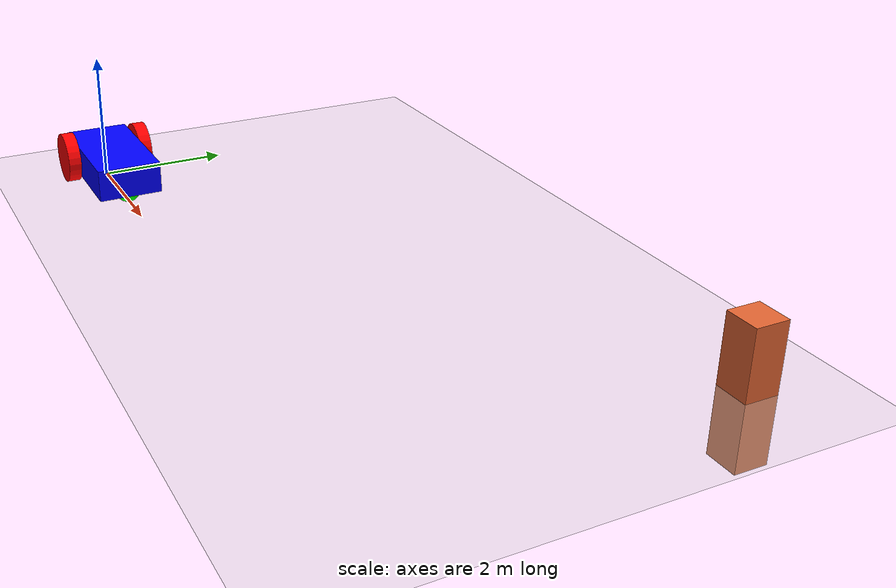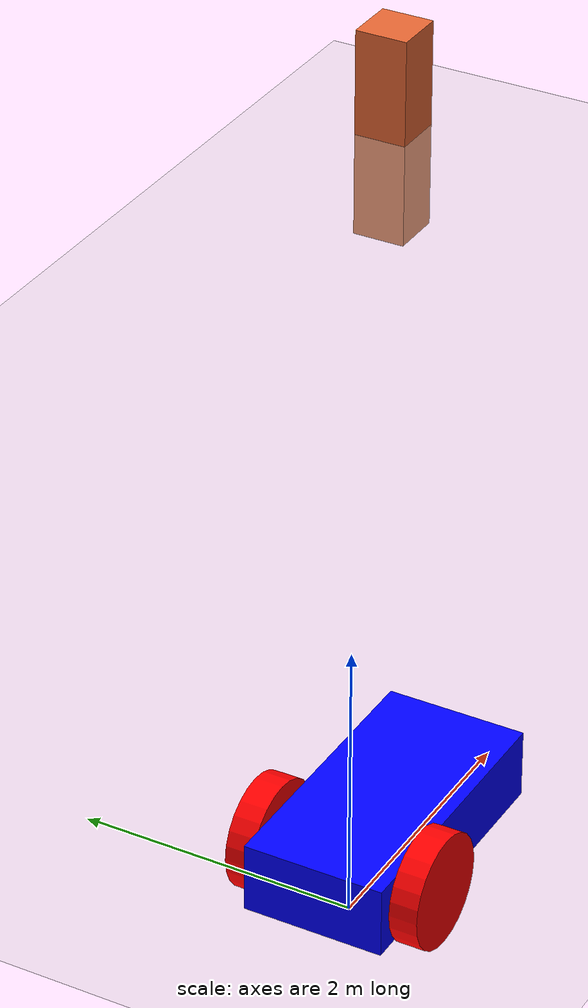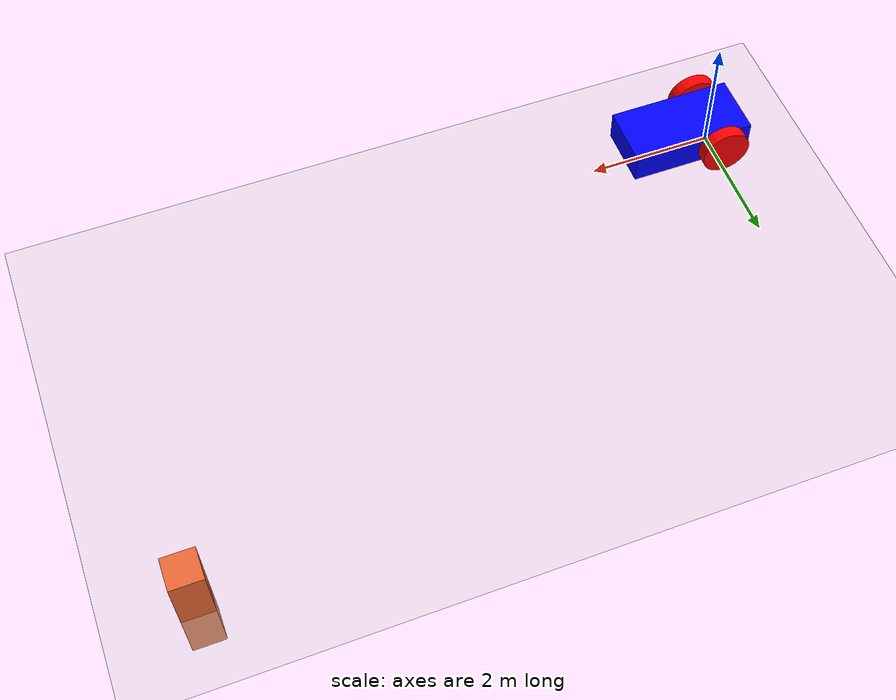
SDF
<?xml version="1.0" ?>
<sdf version="1.8">
    <world name="Moving_robot">
        <physics name="1ms" type="ignored">
            <max_step_size>0.001</max_step_size>
            <real_time_factor>1.0</real_time_factor>
        </physics>
        <plugin
            filename="gz-sim-physics-system"
            name="gz::sim::systems::Physics">
        </plugin>
        <plugin
            filename="gz-sim-user-commands-system"
            name="gz::sim::systems::UserCommands">
        </plugin>
        <plugin
            filename="gz-sim-scene-broadcaster-system"
            name="gz::sim::systems::SceneBroadcaster">
        </plugin>

        <light type="directional" name="sun">
            <cast_shadows>true</cast_shadows>
            <pose>0 0 10 0 0 0</pose>
            <diffuse>0.8 0.8 0.8 1</diffuse>
            <specular>0.2 0.2 0.2 1</specular>
            <attenuation>
                <range>1000</range>
                <constant>0.9</constant>
                <linear>0.01</linear>
                <quadratic>0.001</quadratic>
            </attenuation>
            <direction>-0.5 0.1 -0.9</direction>
        </light>

        <model name="ground_plane">
            <static>true</static>
            <link name="link">
                <collision name="collision">
                <geometry>
                    <plane>
                    <normal>0 0 1</normal>
                    </plane>
                </geometry>
                </collision>
                <visual name="visual">
                <geometry>
                    <plane>
                    <normal>0 0 1</normal>
                    <size>100 100</size>
                    </plane>
                </geometry>
                <material>
                    <ambient>0.8 0.8 0.8 1</ambient>
                    <diffuse>0.8 0.8 0.8 1</diffuse>
                    <specular>0.8 0.8 0.8 1</specular>
                </material>
                </visual>
            </link>
        </model>

        <model name='vehicle_blue' canonical_link='chassis'>
            <pose relative_to='world'>0 0 0 0 0 0</pose>   <!--the pose is relative to the world by default-->

            <link name='chassis'>
                <pose relative_to='__model__'>0.5 0 0.4 0 0 0</pose>
                <inertial> <!--inertial properties of the link mass, inertia matix-->
                    <mass>1.14395</mass>
                    <inertia>
                        <ixx>0.126164</ixx>
                        <ixy>0</ixy>
                        <ixz>0</ixz>
                        <iyy>0.416519</iyy>
                        <iyz>0</iyz>
                        <izz>0.481014</izz>
                    </inertia>
                </inertial>
                <visual name='visual'>
                    <geometry>
                        <box>
                            <size>2.0 1.0 0.5</size> <!--question: this size is in meter-->
                        </box>
                    </geometry>
                    <!--let's add color to our link-->
                    <material>
                        <ambient>0.0 0.0 1.0 1</ambient>
                        <diffuse>0.0 0.0 1.0 1</diffuse>
                        <specular>0.0 0.0 1.0 1</specular>
                    </material>
                </visual>
                <collision name='collision'> <!--todo: describe why we need the collision-->
                    <geometry>
                        <box>
                            <size>2.0 1.0 0.5</size>
                        </box>
                    </geometry>
                </collision>
            </link>

            <!--let's build the left wheel-->
            <link name='left_wheel'>
                <pose relative_to="chassis">-0.5 0.6 0 -1.5707 0 0</pose> <!--angles are in radian-->
                <inertial>
                    <mass>2</mass>
                    <inertia>
                        <ixx>0.145833</ixx>
                        <ixy>0</ixy>
                        <ixz>0</ixz>
                        <iyy>0.145833</iyy>
                        <iyz>0</iyz>
                        <izz>0.125</izz>
                    </inertia>
                </inertial>
                <visual name='visual'>
                    <geometry>
                        <cylinder>
                            <radius>0.4</radius>
                            <length>0.2</length>
                        </cylinder>
                    </geometry>
                    <material>
                        <ambient>1.0 0.0 0.0 1</ambient>
                        <diffuse>1.0 0.0 0.0 1</diffuse>
                        <specular>1.0 0.0 0.0 1</specular>
                    </material>
                </visual>
                <collision name='collision'>
                    <geometry>
                        <cylinder>
                            <radius>0.4</radius>
                            <length>0.2</length>
                        </cylinder>
                    </geometry>
                </collision>
            </link>

            <!--copy and paste for right wheel but change position-->
            <link name='right_wheel'>
                <pose relative_to="chassis">-0.5 -0.6 0 -1.5707 0 0</pose> <!--angles are in radian-->
                <inertial>
                    <mass>1</mass>
                    <inertia>
                        <ixx>0.145833</ixx>
                        <ixy>0</ixy>
                        <ixz>0</ixz>
                        <iyy>0.145833</iyy>
                        <iyz>0</iyz>
                        <izz>0.125</izz>
                    </inertia>
                </inertial>
                <visual name='visual'>
                    <geometry>
                        <cylinder>
                            <radius>0.4</radius>
                            <length>0.2</length>
                        </cylinder>
                    </geometry>
                    <material>
                        <ambient>1.0 0.0 0.0 1</ambient>
                        <diffuse>1.0 0.0 0.0 1</diffuse>
                        <specular>1.0 0.0 0.0 1</specular>
                    </material>
                </visual>
                <collision name='collision'>
                    <geometry>
                        <cylinder>
                            <radius>0.4</radius>
                            <length>0.2</length>
                        </cylinder>
                    </geometry>
                </collision>
            </link>

            <frame name="caster_frame" attached_to='chassis'>
                <pose>0.8 0 -0.2 0 0 0</pose>
            </frame>

            <!--caster wheel-->
            <link name='caster'>
                <pose relative_to='caster_frame'/>
                <inertial>
                    <mass>1</mass>
                    <inertia>
                        <ixx>0.1</ixx>
                        <ixy>0</ixy>
                        <ixz>0</ixz>
                        <iyy>0.1</iyy>
                        <iyz>0</iyz>
                        <izz>0.1</izz>
                    </inertia>
                </inertial>
                <visual name='visual'>
                    <geometry>
                        <sphere>
                            <radius>0.2</radius>
                        </sphere>
                    </geometry>
                    <material>
                        <ambient>0.0 1 0.0 1</ambient>
                        <diffuse>0.0 1 0.0 1</diffuse>
                        <specular>0.0 1 0.0 1</specular>
                    </material>
                </visual>
                <collision name='collision'>
                    <geometry>
                        <sphere>
                            <radius>0.2</radius>
                        </sphere>
                    </geometry>
                </collision>
            </link>

            <!--connecting these links together using joints-->
            <joint name='left_wheel_joint' type='revolute'> <!--continous joint is not supported yet-->
                <pose relative_to='left_wheel'/>
                <parent>chassis</parent>
                <child>left_wheel</child>
                <axis>
                    <xyz expressed_in='__model__'>0 1 0</xyz> <!--can be defined as any frame or even arbitrary frames-->
                    <limit>
                        <lower>-1.79769e+308</lower>    <!--negative infinity-->
                        <upper>1.79769e+308</upper>     <!--positive infinity-->
                    </limit>
                </axis>
            </joint>

            <joint name='right_wheel_joint' type='revolute'>
                <pose relative_to='right_wheel'/>
                <parent>chassis</parent>
                <child>right_wheel</child>
                <axis>
                    <xyz expressed_in='__model__'>0 1 0</xyz>
                    <limit>
                        <lower>-1.79769e+308</lower>    <!--negative infinity-->
                        <upper>1.79769e+308</upper>     <!--positive infinity-->
                    </limit>
                </axis>
            </joint>

            <!--different type of joints ball joint--> <!--defult value is the child-->
            <joint name='caster_wheel' type='ball'>
                <parent>chassis</parent>
                <child>caster</child>
            </joint>

            <!--diff drive plugin-->
            <plugin
                filename="gz-sim-diff-drive-system"
                name="gz::sim::systems::DiffDrive">
                <left_joint>left_wheel_joint</left_joint>
                <right_joint>right_wheel_joint</right_joint>
                <wheel_separation>1.2</wheel_separation>
                <wheel_radius>0.4</wheel_radius>
                <odom_publish_frequency>2</odom_publish_frequency>
                <topic>cmd_vel</topic>
            </plugin>
        </model>

        <model name="destination" canonical_link="main_link">
            <pose relative_to='world'>10 5 0 0 0 0</pose>   <!--the pose is relative to the world by default-->
            <link name='main_link'>
                <pose relative_to='__model__'>0 0 0 0 0 0</pose>
                <inertial> <!--inertial properties of the link mass, inertia matix-->
                    <mass>0.5</mass>
                    <inertia>
                        <ixx>0.177083</ixx>
                        <ixy>0</ixy>
                        <ixz>0</ixz>
                        <iyy>0.177083</iyy>
                        <iyz>0</iyz>
                        <izz>0.020833</izz>
                    </inertia>
                </inertial>
                <visual name='visual'>
                    <geometry>
                        <box>
                            <size>0.5 0.5 2.0</size> <!--question: this size is in meter-->
                        </box>
                    </geometry>
                    <!--let's add color to our link-->
                    <material>
                        <ambient>0.9 0.4 0.2 1</ambient>
                        <diffuse>0.9 0.4 0.2 1</diffuse>
                        <specular>0.9 0.4 0.2 1</specular>
                    </material>
                </visual>
                <collision name='collision'>
                    <geometry>
                        <box>
                            <size>0.5 0.5 2.0</size>
                        </box>
                    </geometry>
                </collision>
            </link>
        </model>

        <!-- Moving Left-->
        <plugin filename="gz-sim-triggered-publisher-system"
                name="gz::sim::systems::TriggeredPublisher">
            <input type="gz.msgs.Int32" topic="/keyboard/keypress">
                <match field="data">16777234</match>
            </input>
            <output type="gz.msgs.Twist" topic="/cmd_vel">
                linear: {x: 0.0}, angular: {z: 0.5}
            </output>
        </plugin>
        <!-- Moving Forward-->
        <plugin filename="gz-sim-triggered-publisher-system"
                name="gz::sim::systems::TriggeredPublisher">
            <input type="gz.msgs.Int32" topic="/keyboard/keypress">
                <match field="data">16777235</match>
            </input>
            <output type="gz.msgs.Twist" topic="/cmd_vel">
                linear: {x: 0.5}, angular: {z: 0.0}
            </output>
        </plugin>
        <!-- Moving Right-->
        <plugin filename="gz-sim-triggered-publisher-system"
                name="gz::sim::systems::TriggeredPublisher">
            <input type="gz.msgs.Int32" topic="/keyboard/keypress">
                <match field="data">16777236</match>
            </input>
            <output type="gz.msgs.Twist" topic="/cmd_vel">
                linear: {x: 0.0}, angular: {z: -0.5}
            </output>
        </plugin>
        <!-- Moving Backward-->
        <plugin filename="gz-sim-triggered-publisher-system"
                name="gz::sim::systems::TriggeredPublisher">
            <input type="gz.msgs.Int32" topic="/keyboard/keypress">
                <match field="data">16777237</match>
            </input>
            <output type="gz.msgs.Twist" topic="/cmd_vel">
                linear: {x: -0.5}, angular: {z: 0.0}
            </output>
        </plugin>
        <!-- Stop Moving -->
        <plugin filename="gz-sim-triggered-publisher-system"
                name="gz::sim::systems::TriggeredPublisher">
            <input type="gz.msgs.Int32" topic="/keyboard/keypress">
                <match field="data">66</match> <!-- B button -->
            </input>
            <output type="gz.msgs.Twist" topic="/cmd_vel">
                linear: {x: 0.0}, angular: {z: 0.0}
            </output>
        </plugin>
    </world>
</sdf>
